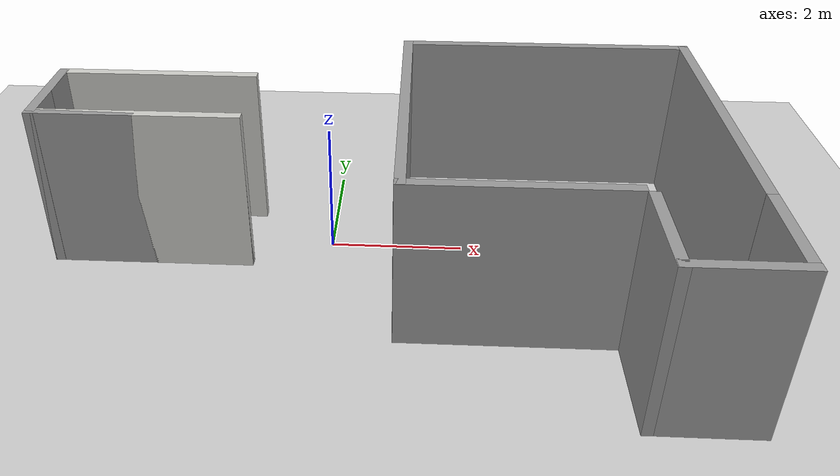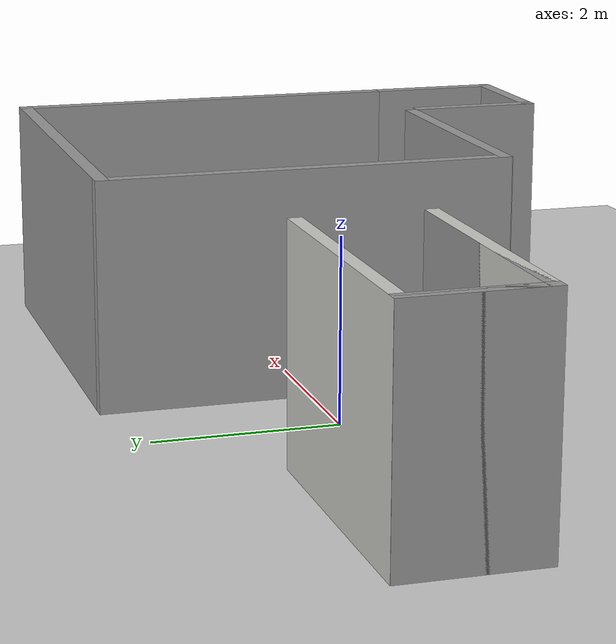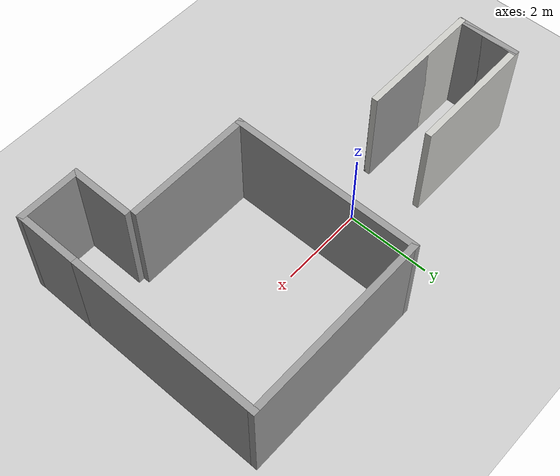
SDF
<sdf version="1.6">
 <world name="default">
  <light name="sun" type="directional">
   <pose>0 0 10 0 -0 0</pose>
   <diffuse>0.8 0.8 0.8 1</diffuse>
   <specular>0.1 0.1 0.1 1</specular>
   <attenuation>
    <range>1000</range>
    <constant>0.9</constant>
    <linear>0.01</linear>
    <quadratic>0.001</quadratic>
   </attenuation>
   <direction>-0.5 0.5 -1</direction>
  </light>
  <model name="ground_plane">
   <static>1</static>
   <link name="link">
    <collision name="collision">
     <geometry><plane><normal>0 0 1</normal><size>100 100</size></plane></geometry>
     <surface><friction><ode><mu>100</mu><mu2>50</mu2></ode></friction></surface>
    </collision>
    <visual name="visual">
     <cast_shadows>0</cast_shadows>
     <geometry><plane><normal>0 0 1</normal><size>100 100</size></plane></geometry>
     <material>
      <script><uri>file://media/materials/scripts/gazebo.material</uri><name>Gazebo/Grey</name></script>
     </material>
    </visual>
   </link>
  </model>
  <gravity>0 0 -9.8</gravity>
  <magnetic_field>6e-06 2.3e-05 -4.2e-05</magnetic_field>
  <atmosphere type="adiabatic"/>
  <physics name="default_physics" default="0" type="ode">
   <max_step_size>0.001</max_step_size>
   <real_time_factor>1</real_time_factor>
   <real_time_update_rate>1000</real_time_update_rate>
  </physics>
  <scene><ambient>0.4 0.4 0.4 1</ambient><background>0.7 0.7 0.7 1</background><shadows>1</shadows></scene>
  <spherical_coordinates>
   <surface_model>EARTH_WGS84</surface_model>
   <latitude_deg>0</latitude_deg>
   <longitude_deg>0</longitude_deg>
   <elevation>0</elevation>
   <heading_deg>0</heading_deg>
  </spherical_coordinates>
  <model name="Proj1v1">
   <pose>0.694132 -0.742055 0 0 -0 0</pose>
   <link name="Wall_0">
    <collision name="Wall_0_Collision">
     <geometry><box><size>1.524 0.15 2.5</size></box></geometry>
     <pose>0 0 1.25 0 -0 0</pose>
    </collision>
    <visual name="Wall_0_Visual">
     <pose>0 0 1.25 0 -0 0</pose>
     <geometry><box><size>1.524 0.15 2.5</size></box></geometry>
     <material>
      <script><uri>file://media/materials/scripts/gazebo.material</uri><name>Gazebo/Grey</name></script>
      <ambient>1 1 1 1</ambient>
     </material>
    </visual>
    <pose>-4.82554 0.891475 0 0 -0 1.5708</pose>
   </link>
   <link name="Wall_1">
    <collision name="Wall_1_Collision">
     <geometry><box><size>1.524 0.15 2.5</size></box></geometry>
     <pose>0 0 1.25 0 -0 0</pose>
    </collision>
    <visual name="Wall_1_Visual">
     <pose>0 0 1.25 0 -0 0</pose>
     <geometry><box><size>1.524 0.15 2.5</size></box></geometry>
     <material>
      <script><uri>file://media/materials/scripts/gazebo.material</uri><name>Gazebo/Grey</name></script>
      <ambient>1 1 1 1</ambient>
     </material>
    </visual>
    <pose>-4.82554 0.891475 0 0 0 -1.5708</pose>
   </link>
   <link name="Wall_12">
    <collision name="Wall_12_Collision">
     <geometry><box><size>4.572 0.15 2.5</size></box></geometry>
     <pose>0 0 1.25 0 -0 0</pose>
    </collision>
    <visual name="Wall_12_Visual">
     <pose>0 0 1.25 0 -0 0</pose>
     <geometry><box><size>4.572 0.15 2.5</size></box></geometry>
     <material>
      <script><uri>file://media/materials/scripts/gazebo.material</uri><name>Gazebo/Grey</name></script>
      <ambient>1 1 1 1</ambient>
     </material>
    </visual>
    <pose>0.397288 0.767602 0 0 0 -1.5708</pose>
   </link>
   <link name="Wall_2">
    <collision name="Wall_2_Collision">
     <geometry><box><size>1.524 0.15 2.5</size></box></geometry>
     <pose>0 0 1.25 0 -0 0</pose>
    </collision>
    <visual name="Wall_2_Visual">
     <pose>0 0 1.25 0 -0 0</pose>
     <geometry><box><size>1.524 0.15 2.5</size></box></geometry>
     <material>
      <script><uri>file://media/materials/scripts/gazebo.material</uri><name>Gazebo/Grey</name></script>
      <ambient>1 1 1 1</ambient>
     </material>
    </visual>
    <pose>-4.82554 0.891475 0 0 -0 1.5708</pose>
   </link>
   <link name="Wall_3">
    <collision name="Wall_3_Collision">
     <geometry><box><size>1.524 0.15 2.5</size></box></geometry>
     <pose>0 0 1.25 0 -0 0</pose>
    </collision>
    <visual name="Wall_3_Visual">
     <pose>0 0 1.25 0 -0 0</pose>
     <geometry><box><size>1.524 0.15 2.5</size></box></geometry>
     <material>
      <script><uri>file://media/materials/scripts/gazebo.material</uri><name>Gazebo/CeilingTiled</name></script>
      <ambient>1 1 1 1</ambient>
     </material>
    </visual>
    <pose>-4.82554 0.891475 0 0 0 -1.5708</pose>
   </link>
   <link name="Wall_30">
    <collision name="Wall_30_Collision">
     <geometry><box><size>4.572 0.15 2.5</size></box></geometry>
     <pose>0 0 1.25 0 -0 0</pose>
    </collision>
    <visual name="Wall_30_Visual">
     <pose>0 0 1.25 0 -0 0</pose>
     <geometry><box><size>4.572 0.15 2.5</size></box></geometry>
     <material>
      <script><uri>file://media/materials/scripts/gazebo.material</uri><name>Gazebo/Grey</name></script>
      <ambient>1 1 1 1</ambient>
     </material>
    </visual>
    <pose>2.60969 2.9786 0 0 -0 0</pose>
   </link>
   <link name="Wall_33">
    <collision name="Wall_33_Collision">
     <geometry><box><size>4.572 0.15 2.5</size></box></geometry>
     <pose>0 0 1.25 0 -0 0</pose>
    </collision>
    <visual name="Wall_33_Visual">
     <pose>0 0 1.25 0 -0 0</pose>
     <geometry><box><size>4.572 0.15 2.5</size></box></geometry>
     <material>
      <script><uri>file://media/materials/scripts/gazebo.material</uri><name>Gazebo/Grey</name></script>
      <ambient>1 1 1 1</ambient>
     </material>
    </visual>
    <pose>4.8204 0.767393 0 0 0 -1.5708</pose>
   </link>
   <link name="Wall_35">
    <collision name="Wall_35_Collision">
     <geometry><box><size>3.048 0.15 2.5</size></box></geometry>
     <pose>0 0 1.25 0 -0 0</pose>
    </collision>
    <visual name="Wall_35_Visual">
     <pose>0 0 1.25 0 -0 0</pose>
     <geometry><box><size>3.048 0.15 2.5</size></box></geometry>
     <material>
      <script><uri>file://media/materials/scripts/gazebo.material</uri><name>Gazebo/Grey</name></script>
      <ambient>1 1 1 1</ambient>
     </material>
    </visual>
    <pose>1.84942 -1.45298 0 0 -0 3.14159</pose>
   </link>
   <link name="Wall_38">
    <collision name="Wall_38_Collision">
     <geometry><box><size>1.524 0.15 2.5</size></box></geometry>
     <pose>0 0 1.25 0 -0 0</pose>
    </collision>
    <visual name="Wall_38_Visual">
     <pose>0 0 1.25 0 -0 0</pose>
     <geometry><box><size>1.524 0.15 2.5</size></box></geometry>
     <material>
      <script><uri>file://media/materials/scripts/gazebo.material</uri><name>Gazebo/Grey</name></script>
      <ambient>1 1 1 1</ambient>
     </material>
    </visual>
    <pose>4.13854 -2.97721 0 0 -0 3.14159</pose>
   </link>
   <link name="Wall_43">
    <collision name="Wall_43_Collision">
     <geometry><box><size>1.52779 0.15 2.5</size></box></geometry>
     <pose>0 0 1.25 0 -0 0</pose>
    </collision>
    <visual name="Wall_43_Visual">
     <pose>0 0 1.25 0 -0 0</pose>
     <geometry><box><size>1.52779 0.15 2.5</size></box></geometry>
     <material>
      <script><uri>file://media/materials/scripts/gazebo.material</uri><name>Gazebo/Grey</name></script>
      <ambient>1 1 1 1</ambient>
     </material>
    </visual>
    <pose>3.43974 -2.28967 0 0 0 -1.57034</pose>
   </link>
   <link name="Wall_45">
    <collision name="Wall_45_Collision">
     <geometry><box><size>1.524 0.15 2.5</size></box></geometry>
     <pose>0 0 1.25 0 -0 0</pose>
    </collision>
    <visual name="Wall_45_Visual">
     <pose>0 0 1.25 0 -0 0</pose>
     <geometry><box><size>1.524 0.15 2.5</size></box></geometry>
     <material>
      <script><uri>file://media/materials/scripts/gazebo.material</uri><name>Gazebo/Grey</name></script>
      <ambient>1 1 1 1</ambient>
     </material>
    </visual>
    <pose>4.82229 -2.27753 0 0 0 -1.5708</pose>
   </link>
   <link name="Wall_6">
    <collision name="Wall_6_Collision">
     <geometry><box><size>3.048 0.15 2.5</size></box></geometry>
     <pose>0 0 1.25 0 -0 0</pose>
    </collision>
    <visual name="Wall_6_Visual">
     <pose>0 0 1.25 0 -0 0</pose>
     <geometry><box><size>3.048 0.15 2.5</size></box></geometry>
     <material>
      <script><uri>file://media/materials/scripts/gazebo.material</uri><name>Gazebo/Grey</name></script>
      <ambient>1 1 1 1</ambient>
     </material>
    </visual>
    <pose>-3.37554 0.207475 0 0 -0 0</pose>
   </link>
   <link name="Wall_7">
    <collision name="Wall_7_Collision">
     <geometry><box><size>3.048 0.15 2.5</size></box></geometry>
     <pose>0 0 1.25 0 -0 0</pose>
    </collision>
    <visual name="Wall_7_Visual">
     <pose>0 0 1.25 0 -0 0</pose>
     <geometry><box><size>3.048 0.15 2.5</size></box></geometry>
     <material>
      <script><uri>file://media/materials/scripts/gazebo.material</uri><name>Gazebo/CeilingTiled</name></script>
      <ambient>1 1 1 1</ambient>
     </material>
    </visual>
    <pose>-3.37554 0.207475 0 0 -0 3.14159</pose>
   </link>
   <link name="Wall_9">
    <collision name="Wall_9_Collision">
     <geometry><box><size>3.048 0.15 2.5</size></box></geometry>
     <pose>0 0 1.25 0 -0 0</pose>
    </collision>
    <visual name="Wall_9_Visual">
     <pose>0 0 1.25 0 -0 0</pose>
     <geometry><box><size>3.048 0.15 2.5</size></box></geometry>
     <material>
      <script><uri>file://media/materials/scripts/gazebo.material</uri><name>Gazebo/CeilingTiled</name></script>
      <ambient>1 1 1 1</ambient>
     </material>
    </visual>
    <pose>-3.37511 1.58028 0 0 -0 0</pose>
   </link>
   <static>1</static>
  </model>
 </world>
</sdf>
